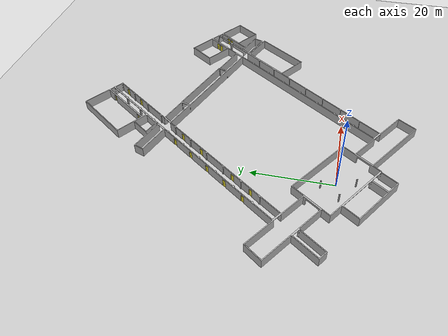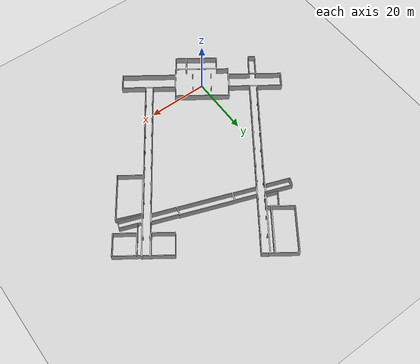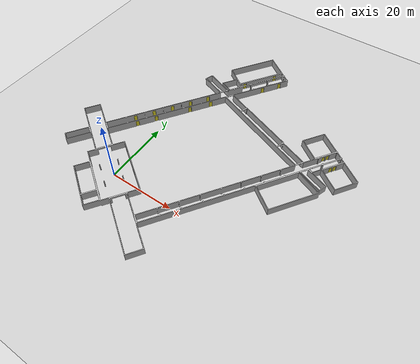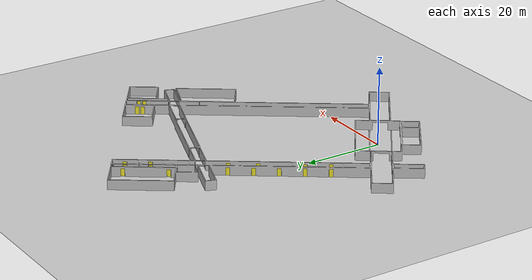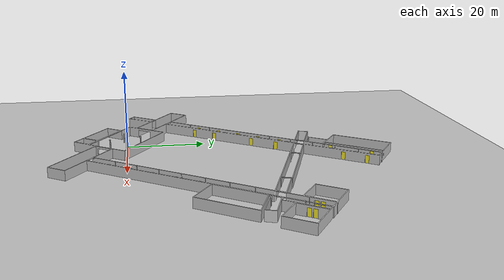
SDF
<?xml version='1.0' encoding='utf-8'?>
<sdf version="1.6">
  <world name="frontiers_brsu_building_c">
    <gravity>0 0 -9.8</gravity>
    <physics default="0" name="default_physics" type="ode">
      <max_step_size>0.001</max_step_size>
      <real_time_factor>1</real_time_factor>
      <real_time_update_rate>1000</real_time_update_rate>
    </physics>
    <scene>
      <ambient>0.6 0.6 0.6 1</ambient>
      <background>0.4 0.4 0.4 1</background>
      <shadows>false</shadows>
    </scene>
    <include>
      <uri>model://sun</uri>
    </include>
    <include>
      <uri>model://ground_plane</uri>
      <pose>0 0 0 0 0 0</pose>
    </include>
    <include>
      <uri>model://frontiers_brsu_building_c</uri>
      <static>true</static>
      <pose>-0.0 0.0 0.0 0.0 0.0 0.0</pose>
    </include>

    <include>
      <name>door-instance-12</name>
      <uri>model://door</uri>
      <static>false</static>
      <pose>11.36165009192261 50.94686086687445 0.0 0.0 -0.0 -0.6108652381976784</pose>

    </include>

    <include>
      <name>door-instance-1</name>
      <uri>model://door</uri>
      <static>false</static>
      <pose>-7.018322462592466 17.915531664203286 0.0 0.0 -0.0 -0.610865238198015</pose>

    </include>

    <include>
      <name>door-instance-13</name>
      <uri>model://door</uri>
      <static>false</static>
      <pose>17.51038948960582 59.72817078165252 0.0 0.0 -0.0 -0.6108652381976784</pose>

    </include>

    <include>
      <name>door-instance-14</name>
      <uri>model://door</uri>
      <static>false</static>
      <pose>46.355757969282834 37.72367993838086 0.0 0.0 -0.0 -0.6108652381979467</pose>

    </include>

    <include>
      <name>door-instance-6</name>
      <uri>model://door</uri>
      <static>false</static>
      <pose>6.747512009832623 37.57518072713912 0.0 0.0 -0.0 -0.610865238198015</pose>

    </include>

    <include>
      <name>door-instance-7</name>
      <uri>model://door</uri>
      <static>false</static>
      <pose>1.849764262115327 34.851916692982655 0.0 0.0 -0.0 2.530727415391778</pose>

    </include>

    <include>
      <name>door-instance-15</name>
      <uri>model://door</uri>
      <static>false</static>
      <pose>47.12435039399323 38.821343677728116 0.0 0.0 -0.0 -0.6108652381979467</pose>

    </include>

    <include>
      <name>door-instance-8</name>
      <uri>model://door</uri>
      <static>false</static>
      <pose>-1.5916943559909422 29.937004427248702 0.0 0.0 -0.0 2.530727415391778</pose>

    </include>

    <include>
      <name>door-instance-4</name>
      <uri>model://door</uri>
      <static>false</static>
      <pose>17.18660315142165 52.48374793319879 0.0 0.0 -0.0 -0.610865238198015</pose>

    </include>

    <include>
      <name>door-instance-16</name>
      <uri>model://door</uri>
      <static>false</static>
      <pose>51.11622961057404 37.112689142653615 0.0 0.0 -0.0 2.530727415391847</pose>

    </include>

    <include>
      <name>door-instance-17</name>
      <uri>model://door</uri>
      <static>false</static>
      <pose>50.34763718586364 36.01502540330637 0.0 0.0 -0.0 2.530727415391847</pose>

    </include>

    <include>
      <name>door-instance-5</name>
      <uri>model://door</uri>
      <static>false</static>
      <pose>20.62806176952792 57.39866019893276 0.0 0.0 -0.0 -0.610865238198015</pose>

    </include>

    <include>
      <name>door-instance-9</name>
      <uri>model://door</uri>
      <static>false</static>
      <pose>-5.033152974097217 25.022092161514742 0.0 0.0 -0.0 2.530727415391778</pose>

    </include>

    <include>
      <name>door-instance-2</name>
      <uri>model://door</uri>
      <static>false</static>
      <pose>-3.576863844486196 22.830443929937246 0.0 0.0 -0.0 -0.610865238198015</pose>

    </include>

    <include>
      <name>door-instance-10</name>
      <uri>model://door</uri>
      <static>false</static>
      <pose>-8.474611592203491 20.10717989578078 0.0 0.0 -0.0 2.530727415391778</pose>

    </include>

    <include>
      <name>door-instance-11</name>
      <uri>model://door</uri>
      <static>false</static>
      <pose>5.29122288022159 39.76682895871661 0.0 0.0 -0.0 2.530727415391778</pose>

    </include>

    <include>
      <name>door-instance-3</name>
      <uri>model://door</uri>
      <static>false</static>
      <pose>2.7324769553753043 31.841116417116172 0.0 0.0 -0.0 -0.610865238198015</pose>

    </include>

  </world>
</sdf>

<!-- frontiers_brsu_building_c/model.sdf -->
<sdf version="1.6">
  <model name="frontiers_brsu_building_c">
    <link name="link">
      <visual name="visual">
	    <geometry>
          <mesh>
            <uri>model://frontiers_brsu_building_c/meshes/frontiers_brsu_building_c.stl</uri>
          </mesh>
        </geometry>
      </visual>
      <collision name="collision">
        <geometry>
          <mesh>
            <uri>model://frontiers_brsu_building_c/meshes/frontiers_brsu_building_c.stl</uri>
          </mesh>
        </geometry>
      </collision>
    </link>
  <static>1</static>
  </model>
</sdf>

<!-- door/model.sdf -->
<sdf version="1.4">
<model name="door:door">
<pose>0 0 0 0 0 0</pose>
<static>false</static>

<link name="door:door-body">
<pose>0.0 0.49000000000000005 1.0 0.0 -0.0 0.0</pose>
<inertial>
<mass>1.0</mass>
<inertia>
<ixx>0.4069</ixx>
<ixy>0.0</ixy>
<ixz>0.0</ixz>
<iyy>0.3322</iyy>
<iyz>0.0</iyz>
<izz>0.0751</izz>
</inertia>
</inertial>
<collision name="collision">
<geometry>
<box>
<size>0.05 0.93 1.98</size>
</box>
</geometry>
</collision>
<visual name="visual">
<geometry>
<box>
<size>0.05 0.93 1.98</size>
</box>
</geometry><material><script><name>Gazebo/DarkYellow</name></script></material></visual>
</link>

<joint type="revolute" name="door:joint-door-hinge">
<pose frame="door:door-hinge">-0.025 0.025 0.995 0.0 -0.0 0.0</pose>
<child>door:door-body</child>
<parent>door:door-hinge</parent>
<axis>
<xyz>0 0 1</xyz>

<limit>
<lower>0.0</lower>
<upper>2.0</upper>
</limit>

</axis>
</joint>

</model>
</sdf>
